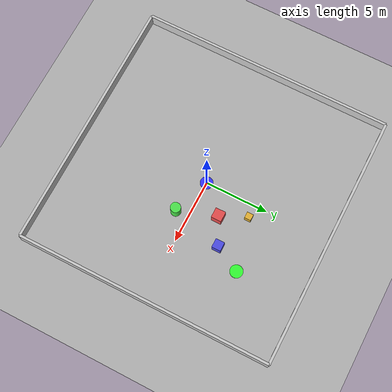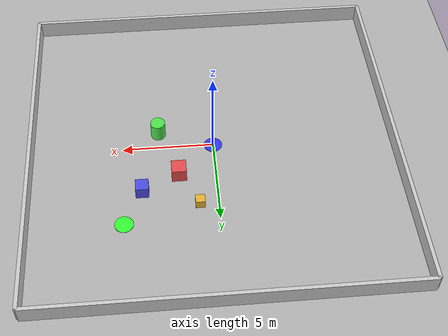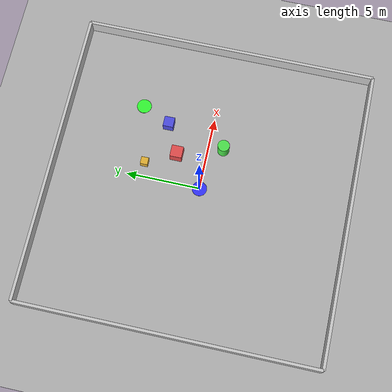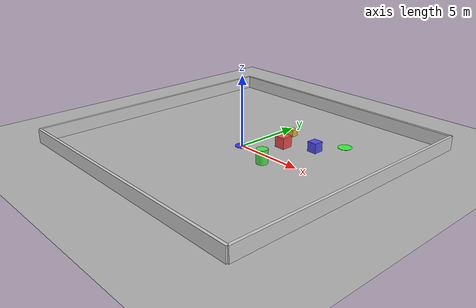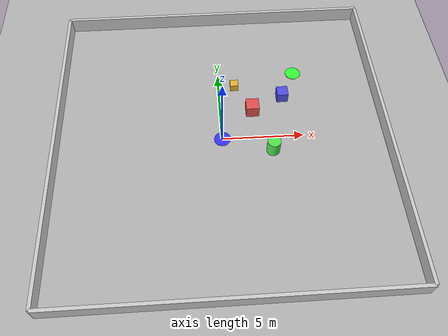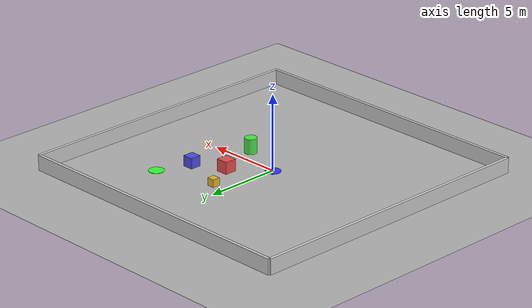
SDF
<?xml version="1.0"?>
<sdf version="1.9">
  <world name="delivery_zone">

    <!-- Physics settings -->
    <physics name="1ms" type="ignored">
      <max_step_size>0.001</max_step_size>
      <real_time_factor>1.0</real_time_factor>
    </physics>

    <!-- Required plugins -->
    <plugin filename="gz-sim-physics-system" name="gz::sim::systems::Physics"/>
    <plugin filename="gz-sim-user-commands-system" name="gz::sim::systems::UserCommands"/>
    <plugin filename="gz-sim-scene-broadcaster-system" name="gz::sim::systems::SceneBroadcaster"/>
    <plugin filename="gz-sim-sensors-system" name="gz::sim::systems::Sensors">
      <render_engine>ogre2</render_engine>
    </plugin>
    <plugin filename="gz-sim-contact-system" name="gz::sim::systems::Contact"/>

    <!-- Lighting -->
    <light type="directional" name="sun">
      <cast_shadows>true</cast_shadows>
      <pose>0 0 10 0 0 0</pose>
      <diffuse>0.8 0.8 0.8 1</diffuse>
      <specular>0.2 0.2 0.2 1</specular>
      <attenuation>
        <range>1000</range>
        <constant>0.9</constant>
        <linear>0.01</linear>
        <quadratic>0.001</quadratic>
      </attenuation>
      <direction>-0.5 0.1 -0.9</direction>
    </light>

    <!-- Ground Plane -->
    <model name="ground_plane">
      <static>true</static>
      <link name="link">
        <collision name="collision">
          <geometry>
            <plane>
              <normal>0 0 1</normal>
              <size>20 20</size>
            </plane>
          </geometry>
          <surface>
            <friction>
              <ode>
                <mu>100</mu>
                <mu2>50</mu2>
              </ode>
            </friction>
          </surface>
        </collision>
        <visual name="visual">
          <geometry>
            <plane>
              <normal>0 0 1</normal>
              <size>20 20</size>
            </plane>
          </geometry>
          <material>
            <ambient>0.3 0.3 0.3 1</ambient>
            <diffuse>0.7 0.7 0.7 1</diffuse>
            <specular>0.01 0.01 0.01 1</specular>
          </material>
        </visual>
      </link>
    </model>

    <!-- ==================== WALLS ==================== -->

    <!-- North Wall -->
    <model name="wall_north">
      <static>true</static>
      <pose>0 10 0.5 0 0 0</pose>
      <link name="link">
        <collision name="collision">
          <geometry>
            <box><size>20 0.2 1</size></box>
          </geometry>
        </collision>
        <visual name="visual">
          <geometry>
            <box><size>20 0.2 1</size></box>
          </geometry>
          <material>
            <ambient>0.5 0.5 0.5 1</ambient>
            <diffuse>0.8 0.8 0.8 1</diffuse>
          </material>
        </visual>
      </link>
    </model>

    <!-- South Wall -->
    <model name="wall_south">
      <static>true</static>
      <pose>0 -10 0.5 0 0 0</pose>
      <link name="link">
        <collision name="collision">
          <geometry>
            <box><size>20 0.2 1</size></box>
          </geometry>
        </collision>
        <visual name="visual">
          <geometry>
            <box><size>20 0.2 1</size></box>
          </geometry>
          <material>
            <ambient>0.5 0.5 0.5 1</ambient>
            <diffuse>0.8 0.8 0.8 1</diffuse>
          </material>
        </visual>
      </link>
    </model>

    <!-- East Wall -->
    <model name="wall_east">
      <static>true</static>
      <pose>10 0 0.5 0 0 0</pose>
      <link name="link">
        <collision name="collision">
          <geometry>
            <box><size>0.2 20 1</size></box>
          </geometry>
        </collision>
        <visual name="visual">
          <geometry>
            <box><size>0.2 20 1</size></box>
          </geometry>
          <material>
            <ambient>0.5 0.5 0.5 1</ambient>
            <diffuse>0.8 0.8 0.8 1</diffuse>
          </material>
        </visual>
      </link>
    </model>

    <!-- West Wall -->
    <model name="wall_west">
      <static>true</static>
      <pose>-10 0 0.5 0 0 0</pose>
      <link name="link">
        <collision name="collision">
          <geometry>
            <box><size>0.2 20 1</size></box>
          </geometry>
        </collision>
        <visual name="visual">
          <geometry>
            <box><size>0.2 20 1</size></box>
          </geometry>
          <material>
            <ambient>0.5 0.5 0.5 1</ambient>
            <diffuse>0.8 0.8 0.8 1</diffuse>
          </material>
        </visual>
      </link>
    </model>

    <!-- ==================== STATIC OBSTACLES ==================== -->

    <!-- Obstacle 1: Cube at (2, 2) -->
    <model name="obstacle_cube_1">
      <static>true</static>
      <pose>2 2 0.4 0 0 0</pose>
      <link name="link">
        <collision name="collision">
          <geometry>
            <box><size>0.8 0.8 0.8</size></box>
          </geometry>
        </collision>
        <visual name="visual">
          <geometry>
            <box><size>0.8 0.8 0.8</size></box>
          </geometry>
          <material>
            <ambient>0.8 0.2 0.2 1</ambient>
            <diffuse>0.9 0.3 0.3 1</diffuse>
          </material>
        </visual>
      </link>
    </model>

    <!-- Obstacle 2: Cylinder at (3, -1) -->
    <model name="obstacle_cylinder">
      <static>true</static>
      <pose>3 -1 0.5 0 0 0</pose>
      <link name="link">
        <collision name="collision">
          <geometry>
            <cylinder>
              <radius>0.4</radius>
              <length>1.0</length>
            </cylinder>
          </geometry>
        </collision>
        <visual name="visual">
          <geometry>
            <cylinder>
              <radius>0.4</radius>
              <length>1.0</length>
            </cylinder>
          </geometry>
          <material>
            <ambient>0.2 0.8 0.2 1</ambient>
            <diffuse>0.3 0.9 0.3 1</diffuse>
          </material>
        </visual>
      </link>
    </model>

    <!-- Obstacle 3: Cube at (4, 3) -->
    <model name="obstacle_cube_2">
      <static>true</static>
      <pose>4 3 0.35 0 0 0</pose>
      <link name="link">
        <collision name="collision">
          <geometry>
            <box><size>0.7 0.7 0.7</size></box>
          </geometry>
        </collision>
        <visual name="visual">
          <geometry>
            <box><size>0.7 0.7 0.7</size></box>
          </geometry>
          <material>
            <ambient>0.2 0.2 0.8 1</ambient>
            <diffuse>0.3 0.3 0.9 1</diffuse>
          </material>
        </visual>
      </link>
    </model>

    <!-- ==================== DYNAMIC OBSTACLE (Moving Box) ==================== -->
    <model name="moving_obstacle">
      <pose>1 4 0.25 0 0 0</pose>
      <link name="link">
        <inertial>
          <mass>10.0</mass>
          <inertia>
            <ixx>0.167</ixx>
            <iyy>0.167</iyy>
            <izz>0.167</izz>
          </inertia>
        </inertial>
        <collision name="collision">
          <geometry>
            <box><size>0.5 0.5 0.5</size></box>
          </geometry>
        </collision>
        <visual name="visual">
          <geometry>
            <box><size>0.5 0.5 0.5</size></box>
          </geometry>
          <material>
            <ambient>0.8 0.6 0.1 1</ambient>
            <diffuse>0.9 0.7 0.2 1</diffuse>
          </material>
        </visual>
      </link>

      <!-- Trajectory plugin for movement -->
      <plugin filename="gz-sim-trajectory-follower-system" name="gz::sim::systems::TrajectoryFollower">
        <waypoints>
          <waypoint><pose>1 4 0.25 0 0 0</pose></waypoint>
          <waypoint><pose>1 -2 0.25 0 0 0</pose></waypoint>
          <waypoint><pose>1 4 0.25 0 0 0</pose></waypoint>
        </waypoints>
        <loop>true</loop>
        <force>50</force>
        <torque>10</torque>
      </plugin>
    </model>

    <!-- ==================== GOAL MARKER (Point B at 5,5) ==================== -->
    <model name="goal_marker">
      <static>true</static>
      <pose>5 5 0.01 0 0 0</pose>
      <link name="link">
        <visual name="visual">
          <geometry>
            <cylinder>
              <radius>0.5</radius>
              <length>0.02</length>
            </cylinder>
          </geometry>
          <material>
            <ambient>0.1 0.9 0.1 1</ambient>
            <diffuse>0.2 1.0 0.2 1</diffuse>
            <emissive>0.1 0.5 0.1 1</emissive>
          </material>
        </visual>
      </link>
    </model>

    <!-- ==================== START MARKER (Point A at 0,0) ==================== -->
    <model name="start_marker">
      <static>true</static>
      <pose>0 0 0.01 0 0 0</pose>
      <link name="link">
        <visual name="visual">
          <geometry>
            <cylinder>
              <radius>0.5</radius>
              <length>0.02</length>
            </cylinder>
          </geometry>
          <material>
            <ambient>0.1 0.1 0.9 1</ambient>
            <diffuse>0.2 0.2 1.0 1</diffuse>
            <emissive>0.1 0.1 0.5 1</emissive>
          </material>
        </visual>
      </link>
    </model>

  </world>
</sdf>
